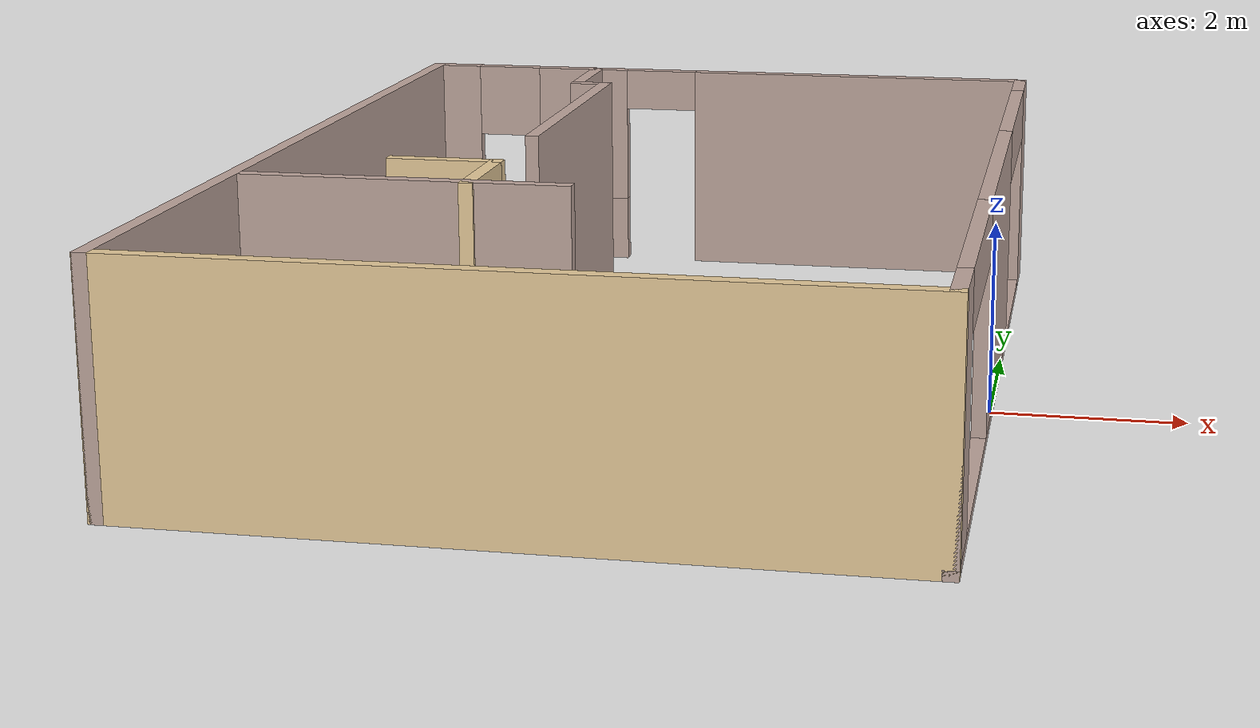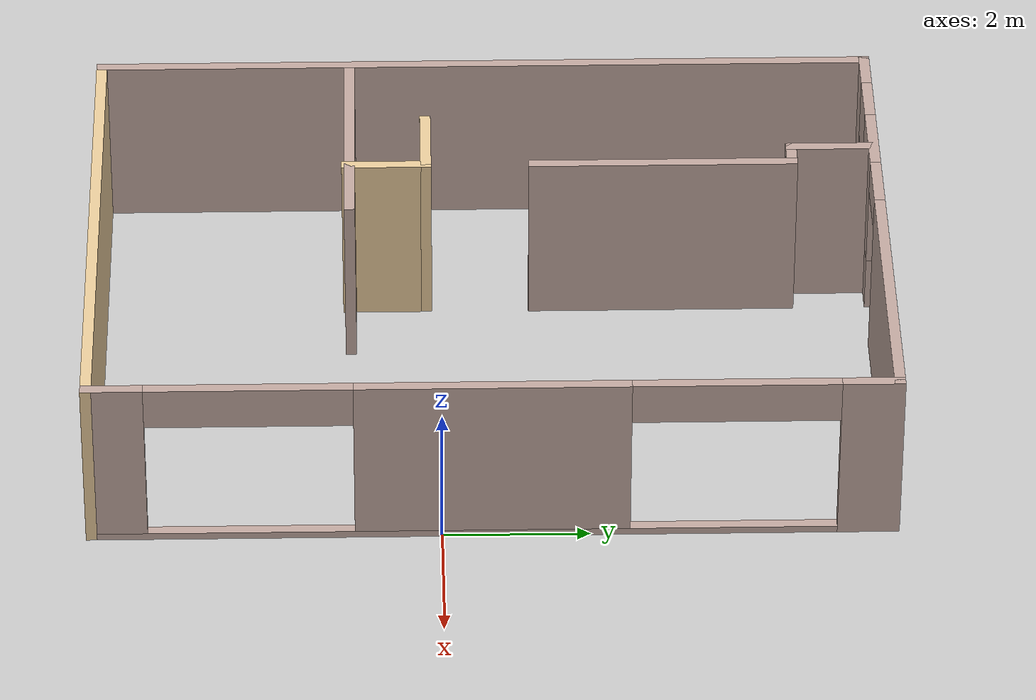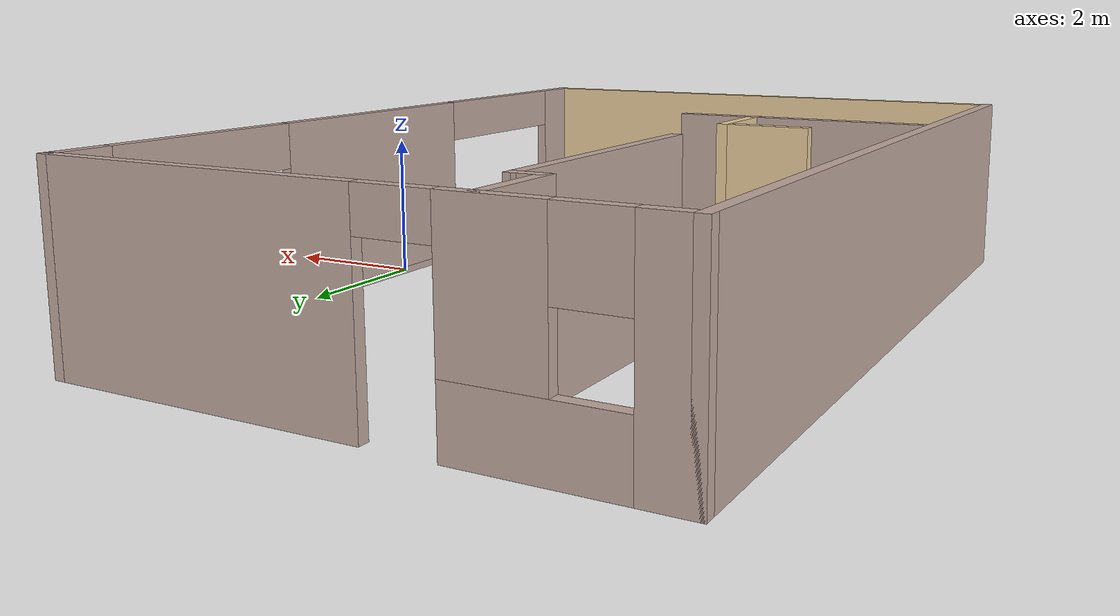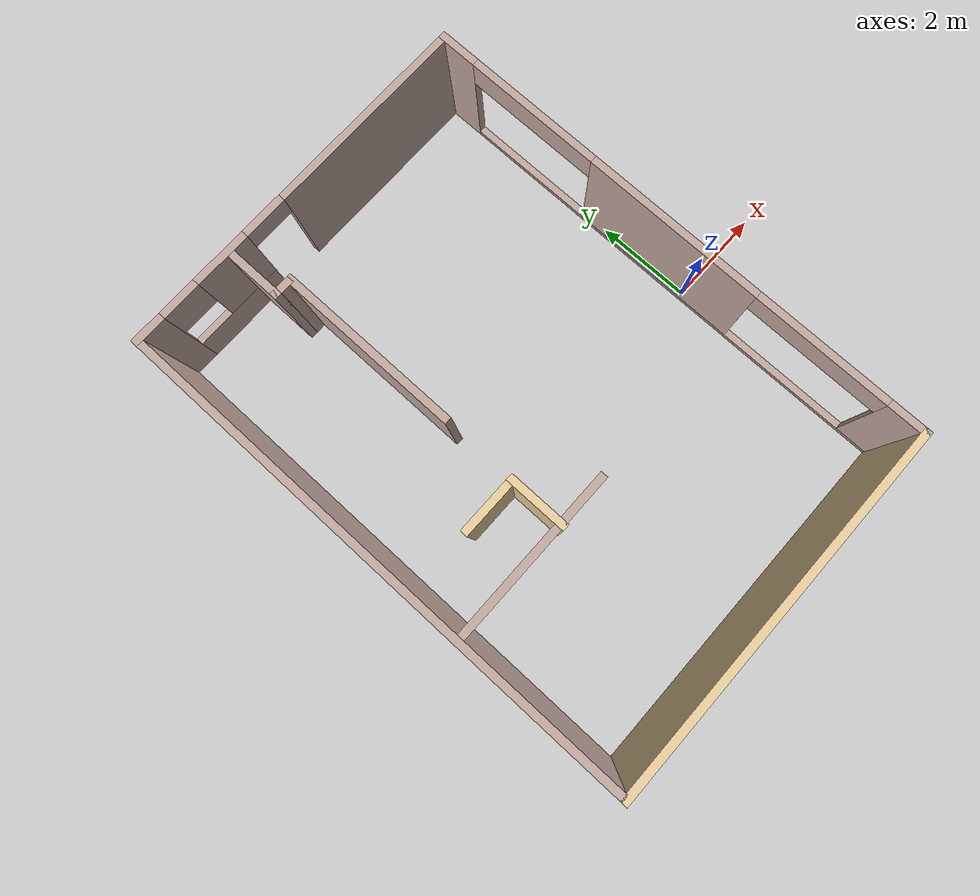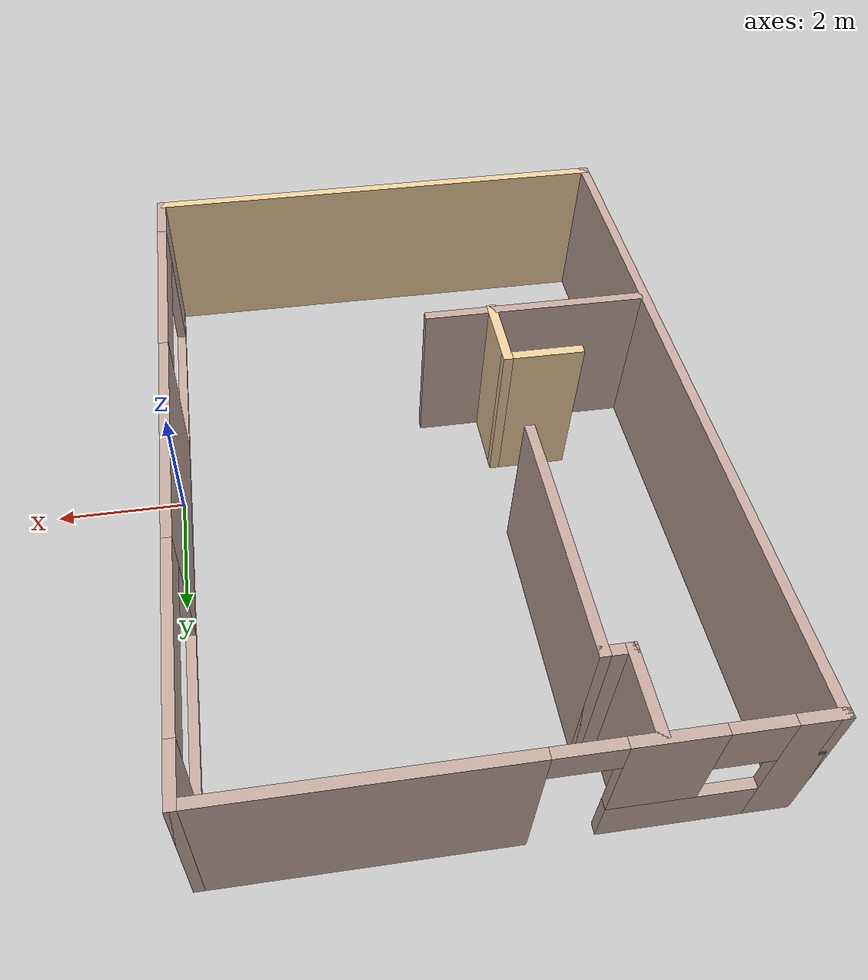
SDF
<?xml version='1.0'?>
<sdf version='1.6'>
  <model name='apt'>
    <pose frame=''>-3.8517 0.682425 0 0 -0 0</pose>
    <link name='Wall_1'>
      <pose frame=''>0 5.425 0 0 -0 0</pose>
      <visual name='Wall_1_Visual_0'>
        <pose frame=''>-3.54924 0 1.25 0 -0 0</pose>
        <geometry>
          <box>
            <size>0.65152 0.15 2.5</size>
          </box>
        </geometry>
        <material>
          <script>
            <uri>file://media/materials/scripts/gazebo.material</uri>
            <name>Gazebo/Grey</name>
          </script>
          <ambient>0.760784 0.662745 0.627451 1</ambient>
        </material>
        <meta>
          <layer>0</layer>
        </meta>
      </visual>
      <collision name='Wall_1_Collision_0'>
        <geometry>
          <box>
            <size>0.65152 0.15 2.5</size>
          </box>
        </geometry>
        <pose frame=''>-3.54924 0 1.25 0 -0 0</pose>
      </collision>
      <visual name='Wall_1_Visual_1'>
        <pose frame=''>1.76024 0 1.25 0 -0 0</pose>
        <geometry>
          <box>
            <size>4.22952 0.15 2.5</size>
          </box>
        </geometry>
        <material>
          <script>
            <uri>file://media/materials/scripts/gazebo.material</uri>
            <name>Gazebo/Grey</name>
          </script>
          <ambient>0.760784 0.662745 0.627451 1</ambient>
        </material>
        <meta>
          <layer>0</layer>
        </meta>
      </visual>
      <collision name='Wall_1_Collision_1'>
        <geometry>
          <box>
            <size>4.22952 0.15 2.5</size>
          </box>
        </geometry>
        <pose frame=''>1.76024 0 1.25 0 -0 0</pose>
      </collision>
      <visual name='Wall_1_Visual_2'>
        <pose frame=''>-2.239 0 0.4 0 -0 0</pose>
        <geometry>
          <box>
            <size>1.96896 0.15 0.8</size>
          </box>
        </geometry>
        <material>
          <script>
            <uri>file://media/materials/scripts/gazebo.material</uri>
            <name>Gazebo/Grey</name>
          </script>
          <ambient>0.760784 0.662745 0.627451 1</ambient>
        </material>
        <meta>
          <layer>0</layer>
        </meta>
      </visual>
      <collision name='Wall_1_Collision_2'>
        <geometry>
          <box>
            <size>1.96896 0.15 0.8</size>
          </box>
        </geometry>
        <pose frame=''>-2.239 0 0.4 0 -0 0</pose>
      </collision>
      <visual name='Wall_1_Visual_3'>
        <pose frame=''>-1.839 0 1.65 0 -0 0</pose>
        <geometry>
          <box>
            <size>1.16895 0.15 1.7</size>
          </box>
        </geometry>
        <material>
          <script>
            <uri>file://media/materials/scripts/gazebo.material</uri>
            <name>Gazebo/Grey</name>
          </script>
          <ambient>0.760784 0.662745 0.627451 1</ambient>
        </material>
        <meta>
          <layer>0</layer>
        </meta>
      </visual>
      <collision name='Wall_1_Collision_3'>
        <geometry>
          <box>
            <size>1.16895 0.15 1.7</size>
          </box>
        </geometry>
        <pose frame=''>-1.839 0 1.65 0 -0 0</pose>
      </collision>
      <visual name='Wall_1_Visual_4'>
        <pose frame=''>-2.82348 0 2.05 0 -0 0</pose>
        <geometry>
          <box>
            <size>0.8 0.15 0.9</size>
          </box>
        </geometry>
        <material>
          <script>
            <uri>file://media/materials/scripts/gazebo.material</uri>
            <name>Gazebo/Grey</name>
          </script>
          <ambient>0.760784 0.662745 0.627451 1</ambient>
        </material>
        <meta>
          <layer>0</layer>
        </meta>
      </visual>
      <collision name='Wall_1_Collision_4'>
        <geometry>
          <box>
            <size>0.8 0.15 0.9</size>
          </box>
        </geometry>
        <pose frame=''>-2.82348 0 2.05 0 -0 0</pose>
      </collision>
      <visual name='Wall_1_Visual_5'>
        <pose frame=''>-0.804525 0 2.25 0 -0 0</pose>
        <geometry>
          <box>
            <size>0.9 0.15 0.5</size>
          </box>
        </geometry>
        <material>
          <script>
            <uri>file://media/materials/scripts/gazebo.material</uri>
            <name>Gazebo/Grey</name>
          </script>
          <ambient>0.760784 0.662745 0.627451 1</ambient>
        </material>
        <meta>
          <layer>0</layer>
        </meta>
      </visual>
      <collision name='Wall_1_Collision_5'>
        <geometry>
          <box>
            <size>0.9 0.15 0.5</size>
          </box>
        </geometry>
        <pose frame=''>-0.804525 0 2.25 0 -0 0</pose>
      </collision>
    </link>
    <link name='Wall_10'>
      <collision name='Wall_10_Collision'>
        <geometry>
          <box>
            <size>1.25 0.15 2.5</size>
          </box>
        </geometry>
        <pose frame=''>0 0 1.25 0 -0 0</pose>
      </collision>
      <visual name='Wall_10_Visual'>
        <pose frame=''>0 0 1.25 0 -0 0</pose>
        <geometry>
          <box>
            <size>1.25 0.15 2.5</size>
          </box>
        </geometry>
        <material>
          <script>
            <uri>file://media/materials/scripts/gazebo.material</uri>
            <name>Gazebo/Grey</name>
          </script>
          <ambient>0.760784 0.662745 0.627451 1</ambient>
        </material>
        <meta>
          <layer>0</layer>
        </meta>
      </visual>
      <pose frame=''>-1.66105 4.81692 0 0 0 -1.5708</pose>
    </link>
    <link name='Wall_14'>
      <collision name='Wall_14_Collision'>
        <geometry>
          <box>
            <size>0.5 0.15 2.5</size>
          </box>
        </geometry>
        <pose frame=''>0 0 1.25 0 -0 0</pose>
      </collision>
      <visual name='Wall_14_Visual'>
        <pose frame=''>0 0 1.25 0 -0 0</pose>
        <geometry>
          <box>
            <size>0.5 0.15 2.5</size>
          </box>
        </geometry>
        <material>
          <script>
            <uri>file://media/materials/scripts/gazebo.material</uri>
            <name>Gazebo/Grey</name>
          </script>
          <ambient>0.760784 0.662745 0.627451 1</ambient>
        </material>
        <meta>
          <layer>0</layer>
        </meta>
      </visual>
      <pose frame=''>-1.48605 4.26692 0 0 -0 0</pose>
    </link>
    <link name='Wall_15'>
      <collision name='Wall_15_Collision'>
        <geometry>
          <box>
            <size>3.75 0.15 2.5</size>
          </box>
        </geometry>
        <pose frame=''>0 0 1.25 0 -0 0</pose>
      </collision>
      <visual name='Wall_15_Visual'>
        <pose frame=''>0 0 1.25 0 -0 0</pose>
        <geometry>
          <box>
            <size>3.75 0.15 2.5</size>
          </box>
        </geometry>
        <material>
          <script>
            <uri>file://media/materials/scripts/gazebo.material</uri>
            <name>Gazebo/Grey</name>
          </script>
          <ambient>0.760784 0.662745 0.627451 1</ambient>
        </material>
        <meta>
          <layer>0</layer>
        </meta>
      </visual>
      <pose frame=''>-1.31105 2.46692 0 0 0 -1.5708</pose>
    </link>
    <link name='Wall_17'>
      <collision name='Wall_17_Collision'>
        <geometry>
          <box>
            <size>1.25 0.15 2.5</size>
          </box>
        </geometry>
        <pose frame=''>0 0 1.25 0 -0 0</pose>
      </collision>
      <visual name='Wall_17_Visual'>
        <pose frame=''>0 0 1.25 0 -0 0</pose>
        <geometry>
          <box>
            <size>1.25 0.15 2.5</size>
          </box>
        </geometry>
        <material>
          <script>
            <uri>file://media/materials/scripts/gazebo.material</uri>
            <name>Gazebo/Grey</name>
          </script>
          <ambient>0.921569 0.807843 0.615686 1</ambient>
        </material>
        <meta>
          <layer>0</layer>
        </meta>
      </visual>
      <pose frame=''>-1.32456 -1.39414 0 0 -0 1.5708</pose>
    </link>
    <link name='Wall_18'>
      <collision name='Wall_18_Collision'>
        <geometry>
          <box>
            <size>1.25 0.15 2.5</size>
          </box>
        </geometry>
        <pose frame=''>0 0 1.25 0 -0 0</pose>
      </collision>
      <visual name='Wall_18_Visual'>
        <pose frame=''>0 0 1.25 0 -0 0</pose>
        <geometry>
          <box>
            <size>1.25 0.15 2.5</size>
          </box>
        </geometry>
        <material>
          <script>
            <uri>file://media/materials/scripts/gazebo.material</uri>
            <name>Gazebo/Grey</name>
          </script>
          <ambient>0.921569 0.807843 0.615686 1</ambient>
        </material>
        <meta>
          <layer>0</layer>
        </meta>
      </visual>
      <pose frame=''>-1.87456 -0.84414 0 0 -0 3.14159</pose>
    </link>
    <link name='Wall_2'>
      <pose frame=''>3.8 0 0 0 0 -1.5708</pose>
      <visual name='Wall_2_Visual_0'>
        <pose frame=''>-5.0781 0 1.25 0 -0 0</pose>
        <geometry>
          <box>
            <size>0.843802 0.15 2.5</size>
          </box>
        </geometry>
        <material>
          <script>
            <uri>file://media/materials/scripts/gazebo.material</uri>
            <name>Gazebo/Grey</name>
          </script>
          <ambient>0.760784 0.662745 0.627451 1</ambient>
        </material>
        <meta>
          <layer>0</layer>
        </meta>
      </visual>
      <collision name='Wall_2_Collision_0'>
        <geometry>
          <box>
            <size>0.843802 0.15 2.5</size>
          </box>
        </geometry>
        <pose frame=''>-5.0781 0 1.25 0 -0 0</pose>
      </collision>
      <visual name='Wall_2_Visual_1'>
        <pose frame=''>0.421901 0 0.05 0 -0 0</pose>
        <geometry>
          <box>
            <size>10.1562 0.15 0.1</size>
          </box>
        </geometry>
        <material>
          <script>
            <uri>file://media/materials/scripts/gazebo.material</uri>
            <name>Gazebo/Grey</name>
          </script>
          <ambient>0.760784 0.662745 0.627451 1</ambient>
        </material>
        <meta>
          <layer>0</layer>
        </meta>
      </visual>
      <collision name='Wall_2_Collision_1'>
        <geometry>
          <box>
            <size>10.1562 0.15 0.1</size>
          </box>
        </geometry>
        <pose frame=''>0.421901 0 0.05 0 -0 0</pose>
      </collision>
      <visual name='Wall_2_Visual_2'>
        <pose frame=''>0.004121 0 1.3 0 -0 0</pose>
        <geometry>
          <box>
            <size>3.72064 0.15 2.4</size>
          </box>
        </geometry>
        <material>
          <script>
            <uri>file://media/materials/scripts/gazebo.material</uri>
            <name>Gazebo/Grey</name>
          </script>
          <ambient>0.760784 0.662745 0.627451 1</ambient>
        </material>
        <meta>
          <layer>0</layer>
        </meta>
      </visual>
      <collision name='Wall_2_Collision_2'>
        <geometry>
          <box>
            <size>3.72064 0.15 2.4</size>
          </box>
        </geometry>
        <pose frame=''>0.004121 0 1.3 0 -0 0</pose>
      </collision>
      <visual name='Wall_2_Visual_3'>
        <pose frame=''>5.08222 0 1.3 0 -0 0</pose>
        <geometry>
          <box>
            <size>0.83556 0.15 2.4</size>
          </box>
        </geometry>
        <material>
          <script>
            <uri>file://media/materials/scripts/gazebo.material</uri>
            <name>Gazebo/Grey</name>
          </script>
          <ambient>0.760784 0.662745 0.627451 1</ambient>
        </material>
        <meta>
          <layer>0</layer>
        </meta>
      </visual>
      <collision name='Wall_2_Collision_3'>
        <geometry>
          <box>
            <size>0.83556 0.15 2.4</size>
          </box>
        </geometry>
        <pose frame=''>5.08222 0 1.3 0 -0 0</pose>
      </collision>
      <visual name='Wall_2_Visual_4'>
        <pose frame=''>-3.2562 0 2.2 0 -0 0</pose>
        <geometry>
          <box>
            <size>2.8 0.15 0.6</size>
          </box>
        </geometry>
        <material>
          <script>
            <uri>file://media/materials/scripts/gazebo.material</uri>
            <name>Gazebo/Grey</name>
          </script>
          <ambient>0.760784 0.662745 0.627451 1</ambient>
        </material>
        <meta>
          <layer>0</layer>
        </meta>
      </visual>
      <collision name='Wall_2_Collision_4'>
        <geometry>
          <box>
            <size>2.8 0.15 0.6</size>
          </box>
        </geometry>
        <pose frame=''>-3.2562 0 2.2 0 -0 0</pose>
      </collision>
      <visual name='Wall_2_Visual_5'>
        <pose frame=''>3.26444 0 2.2 0 -0 0</pose>
        <geometry>
          <box>
            <size>2.8 0.15 0.6</size>
          </box>
        </geometry>
        <material>
          <script>
            <uri>file://media/materials/scripts/gazebo.material</uri>
            <name>Gazebo/Grey</name>
          </script>
          <ambient>0.760784 0.662745 0.627451 1</ambient>
        </material>
        <meta>
          <layer>0</layer>
        </meta>
      </visual>
      <collision name='Wall_2_Collision_5'>
        <geometry>
          <box>
            <size>2.8 0.15 0.6</size>
          </box>
        </geometry>
        <pose frame=''>3.26444 0 2.2 0 -0 0</pose>
      </collision>
    </link>
    <link name='Wall_4'>
      <collision name='Wall_4_Collision'>
        <geometry>
          <box>
            <size>11 0.15 2.5</size>
          </box>
        </geometry>
        <pose frame=''>0 0 1.25 0 -0 0</pose>
      </collision>
      <visual name='Wall_4_Visual'>
        <pose frame=''>0 0 1.25 0 -0 0</pose>
        <geometry>
          <box>
            <size>11 0.15 2.5</size>
          </box>
        </geometry>
        <material>
          <script>
            <uri>file://media/materials/scripts/gazebo.material</uri>
            <name>Gazebo/Grey</name>
          </script>
          <ambient>0.760784 0.662745 0.627451 1</ambient>
        </material>
        <meta>
          <layer>0</layer>
        </meta>
      </visual>
      <pose frame=''>-3.8 0 0 0 0 -1.5708</pose>
    </link>
    <link name='Wall_5'>
      <collision name='Wall_5_Collision'>
        <geometry>
          <box>
            <size>7.75 0.15 2.5</size>
          </box>
        </geometry>
        <pose frame=''>0 0 1.25 0 -0 0</pose>
      </collision>
      <visual name='Wall_5_Visual'>
        <pose frame=''>0 0 1.25 0 -0 0</pose>
        <geometry>
          <box>
            <size>7.75 0.15 2.5</size>
          </box>
        </geometry>
        <material>
          <script>
            <uri>file://media/materials/scripts/gazebo.material</uri>
            <name>Gazebo/Grey</name>
          </script>
          <ambient>0.921569 0.807843 0.615686 1</ambient>
        </material>
        <meta>
          <layer>0</layer>
        </meta>
      </visual>
      <pose frame=''>0 -5.425 0 0 -0 0</pose>
    </link>
    <link name='Wall_8'>
      <collision name='Wall_8_Collision'>
        <geometry>
          <box>
            <size>3.5 0.15 2.5</size>
          </box>
        </geometry>
        <pose frame=''>0 0 1.25 0 -0 0</pose>
      </collision>
      <visual name='Wall_8_Visual'>
        <pose frame=''>0 0 1.25 0 -0 0</pose>
        <geometry>
          <box>
            <size>3.5 0.15 2.5</size>
          </box>
        </geometry>
        <material>
          <script>
            <uri>file://media/materials/scripts/gazebo.material</uri>
            <name>Gazebo/Grey</name>
          </script>
          <ambient>0.760784 0.662745 0.627451 1</ambient>
        </material>
        <meta>
          <layer>0</layer>
        </meta>
      </visual>
      <pose frame=''>-2.004 -1.91004 0 0 -0 0</pose>
    </link>
    <static>1</static>
  </model>
</sdf>
